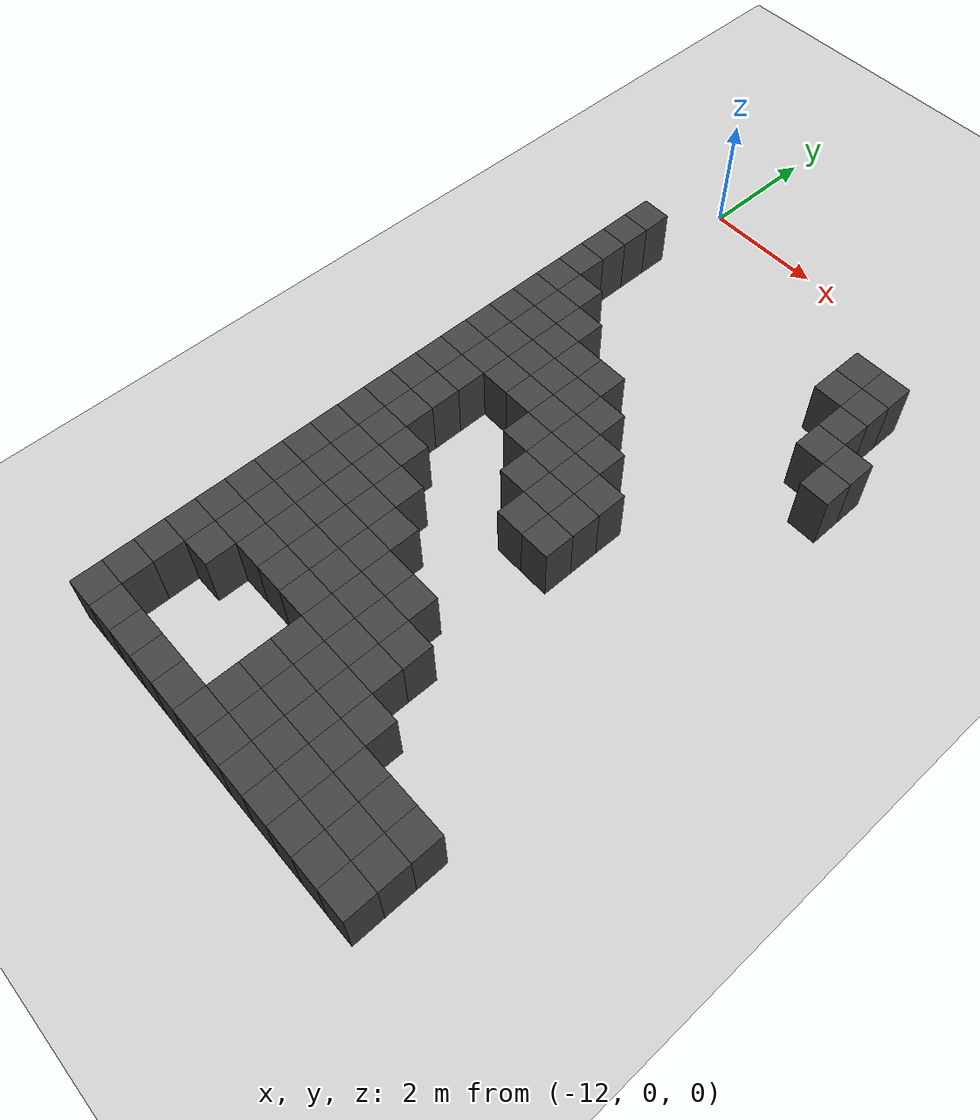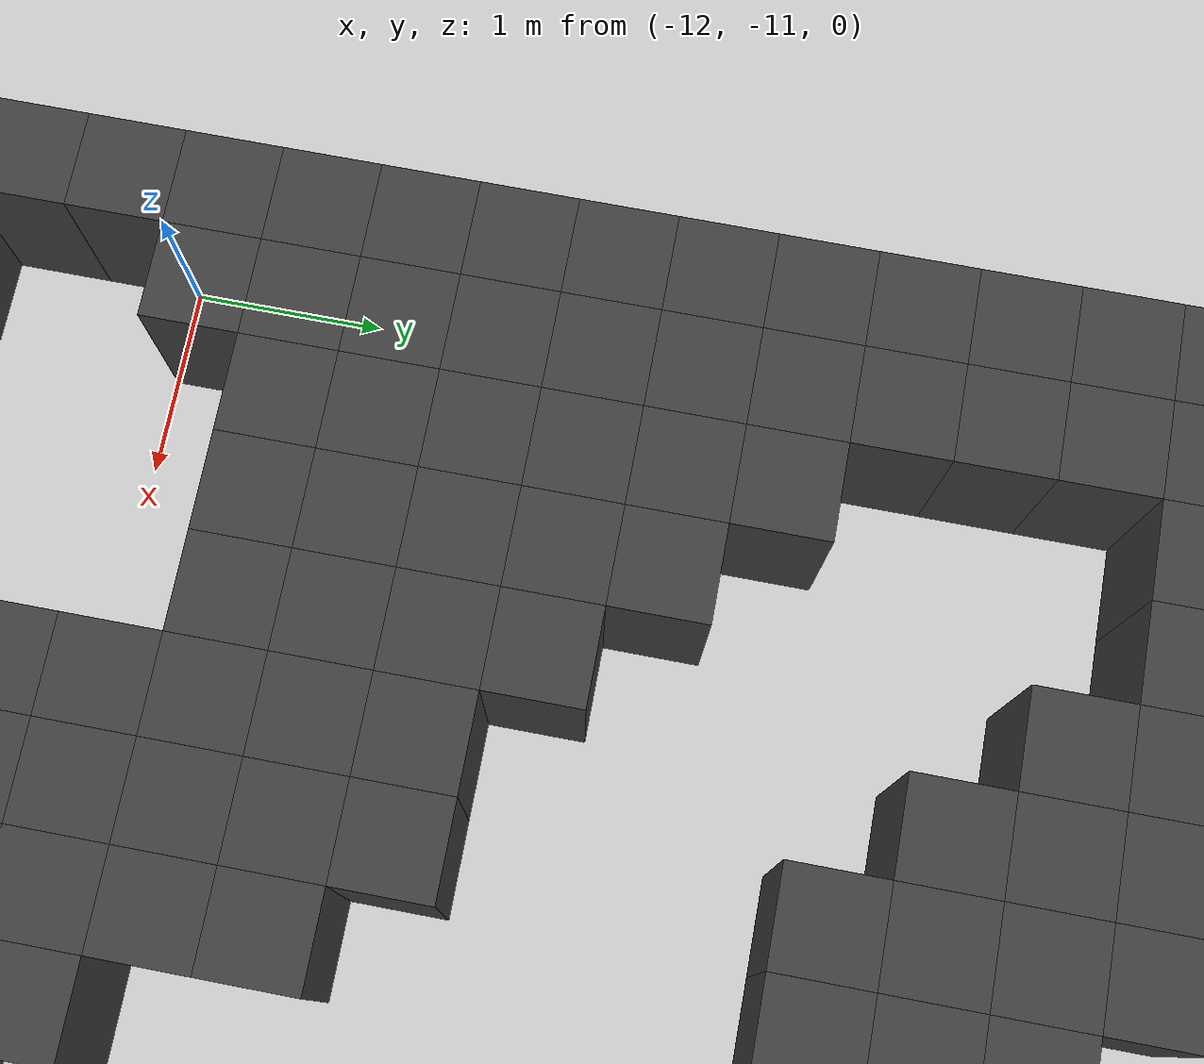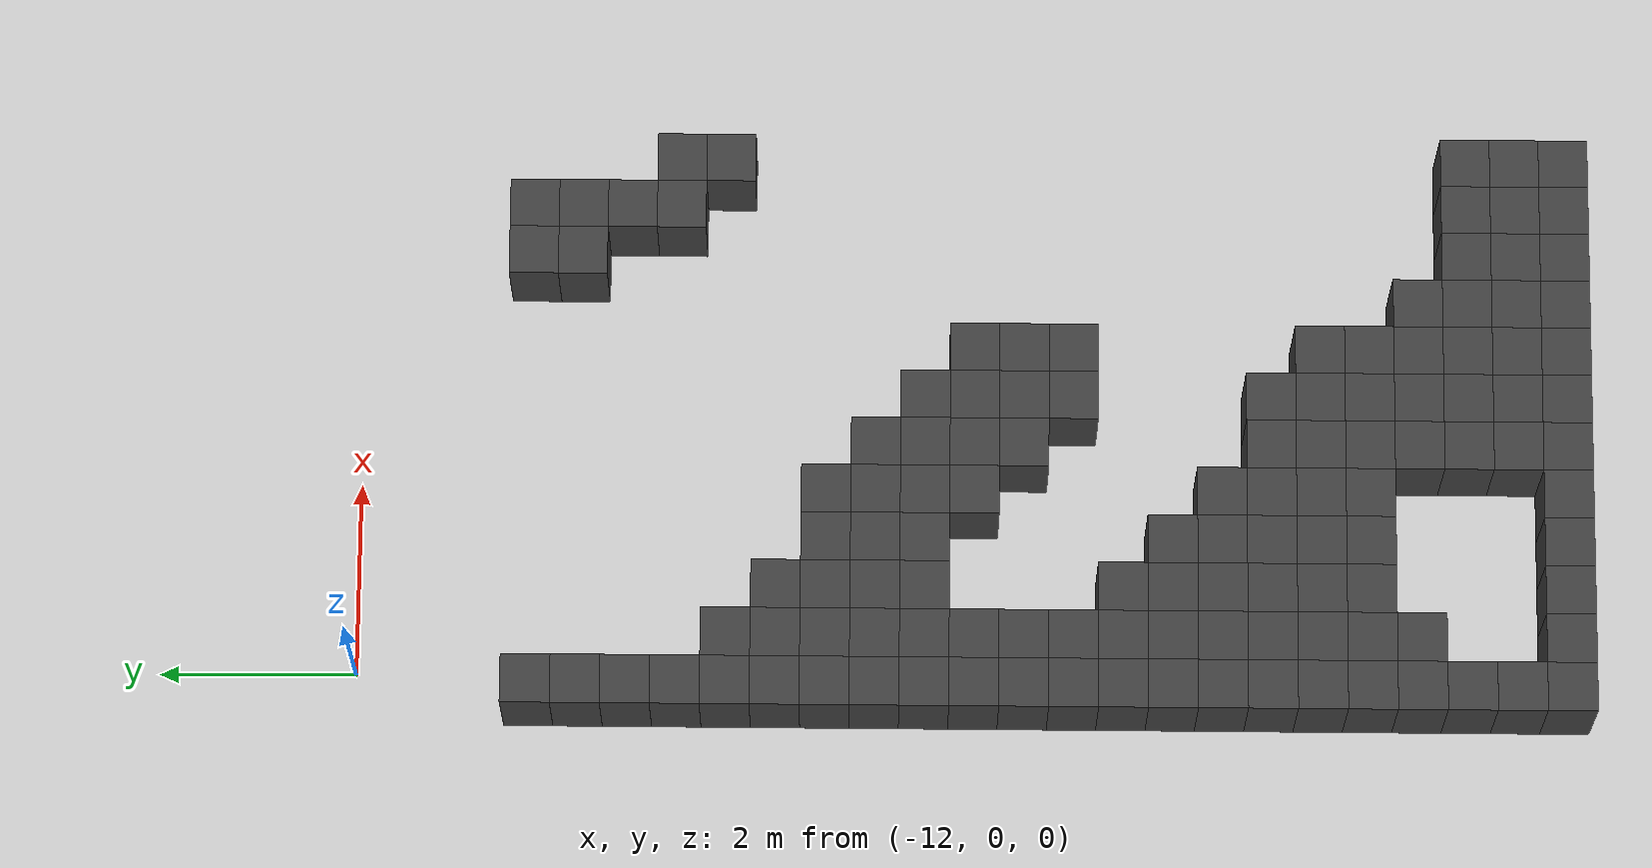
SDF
<sdf version="1.7">
 <world name="map_9826">
  <model name="ground_plane">
   <static>true</static>
   <link name="link">
    <collision name="collision">
     <geometry><plane><normal>0 0 1</normal><size>200 200</size></plane></geometry>
    </collision>
    <visual name="visual">
     <geometry><plane><normal>0 0 1</normal><size>200 200</size></plane></geometry>
     <material><ambient>0.8 0.8 0.8 1</ambient><diffuse>0.8 0.8 0.8 1</diffuse></material>
    </visual>
   </link>
  </model>
  <model name="maze_environment">
   <static>true</static>
   <link name="wall_607">
    <pose>-12.250 -1.750 0.500 0 0 0</pose>
    <collision name="col"><geometry><box><size>0.5 0.5 1.0</size></box></geometry></collision>
    <visual name="vis">
     <geometry><box><size>0.5 0.5 1.0</size></box></geometry>
     <material><ambient>0.15 0.15 0.15 1</ambient><diffuse>0.25 0.25 0.25 1</diffuse></material>
    </visual>
   </link>
   <link name="wall_608">
    <pose>-7.750 -1.750 0.500 0 0 0</pose>
    <collision name="col"><geometry><box><size>0.5 0.5 1.0</size></box></geometry></collision>
    <visual name="vis">
     <geometry><box><size>0.5 0.5 1.0</size></box></geometry>
     <material><ambient>0.15 0.15 0.15 1</ambient><diffuse>0.25 0.25 0.25 1</diffuse></material>
    </visual>
   </link>
   <link name="wall_609">
    <pose>-7.250 -1.750 0.500 0 0 0</pose>
    <collision name="col"><geometry><box><size>0.5 0.5 1.0</size></box></geometry></collision>
    <visual name="vis">
     <geometry><box><size>0.5 0.5 1.0</size></box></geometry>
     <material><ambient>0.15 0.15 0.15 1</ambient><diffuse>0.25 0.25 0.25 1</diffuse></material>
    </visual>
   </link>
   <link name="wall_629">
    <pose>-12.250 -2.250 0.500 0 0 0</pose>
    <collision name="col"><geometry><box><size>0.5 0.5 1.0</size></box></geometry></collision>
    <visual name="vis">
     <geometry><box><size>0.5 0.5 1.0</size></box></geometry>
     <material><ambient>0.15 0.15 0.15 1</ambient><diffuse>0.25 0.25 0.25 1</diffuse></material>
    </visual>
   </link>
   <link name="wall_630">
    <pose>-7.750 -2.250 0.500 0 0 0</pose>
    <collision name="col"><geometry><box><size>0.5 0.5 1.0</size></box></geometry></collision>
    <visual name="vis">
     <geometry><box><size>0.5 0.5 1.0</size></box></geometry>
     <material><ambient>0.15 0.15 0.15 1</ambient><diffuse>0.25 0.25 0.25 1</diffuse></material>
    </visual>
   </link>
   <link name="wall_631">
    <pose>-7.250 -2.250 0.500 0 0 0</pose>
    <collision name="col"><geometry><box><size>0.5 0.5 1.0</size></box></geometry></collision>
    <visual name="vis">
     <geometry><box><size>0.5 0.5 1.0</size></box></geometry>
     <material><ambient>0.15 0.15 0.15 1</ambient><diffuse>0.25 0.25 0.25 1</diffuse></material>
    </visual>
   </link>
   <link name="wall_646">
    <pose>-12.250 -2.750 0.500 0 0 0</pose>
    <collision name="col"><geometry><box><size>0.5 0.5 1.0</size></box></geometry></collision>
    <visual name="vis">
     <geometry><box><size>0.5 0.5 1.0</size></box></geometry>
     <material><ambient>0.15 0.15 0.15 1</ambient><diffuse>0.25 0.25 0.25 1</diffuse></material>
    </visual>
   </link>
   <link name="wall_647">
    <pose>-7.250 -2.750 0.500 0 0 0</pose>
    <collision name="col"><geometry><box><size>0.5 0.5 1.0</size></box></geometry></collision>
    <visual name="vis">
     <geometry><box><size>0.5 0.5 1.0</size></box></geometry>
     <material><ambient>0.15 0.15 0.15 1</ambient><diffuse>0.25 0.25 0.25 1</diffuse></material>
    </visual>
   </link>
   <link name="wall_661">
    <pose>-12.250 -3.250 0.500 0 0 0</pose>
    <collision name="col"><geometry><box><size>0.5 0.5 1.0</size></box></geometry></collision>
    <visual name="vis">
     <geometry><box><size>0.5 0.5 1.0</size></box></geometry>
     <material><ambient>0.15 0.15 0.15 1</ambient><diffuse>0.25 0.25 0.25 1</diffuse></material>
    </visual>
   </link>
   <link name="wall_662">
    <pose>-7.250 -3.250 0.500 0 0 0</pose>
    <collision name="col"><geometry><box><size>0.5 0.5 1.0</size></box></geometry></collision>
    <visual name="vis">
     <geometry><box><size>0.5 0.5 1.0</size></box></geometry>
     <material><ambient>0.15 0.15 0.15 1</ambient><diffuse>0.25 0.25 0.25 1</diffuse></material>
    </visual>
   </link>
   <link name="wall_663">
    <pose>-6.750 -3.250 0.500 0 0 0</pose>
    <collision name="col"><geometry><box><size>0.5 0.5 1.0</size></box></geometry></collision>
    <visual name="vis">
     <geometry><box><size>0.5 0.5 1.0</size></box></geometry>
     <material><ambient>0.15 0.15 0.15 1</ambient><diffuse>0.25 0.25 0.25 1</diffuse></material>
    </visual>
   </link>
   <link name="wall_677">
    <pose>-12.250 -3.750 0.500 0 0 0</pose>
    <collision name="col"><geometry><box><size>0.5 0.5 1.0</size></box></geometry></collision>
    <visual name="vis">
     <geometry><box><size>0.5 0.5 1.0</size></box></geometry>
     <material><ambient>0.15 0.15 0.15 1</ambient><diffuse>0.25 0.25 0.25 1</diffuse></material>
    </visual>
   </link>
   <link name="wall_678">
    <pose>-11.750 -3.750 0.500 0 0 0</pose>
    <collision name="col"><geometry><box><size>0.5 0.5 1.0</size></box></geometry></collision>
    <visual name="vis">
     <geometry><box><size>0.5 0.5 1.0</size></box></geometry>
     <material><ambient>0.15 0.15 0.15 1</ambient><diffuse>0.25 0.25 0.25 1</diffuse></material>
    </visual>
   </link>
   <link name="wall_679">
    <pose>-6.750 -3.750 0.500 0 0 0</pose>
    <collision name="col"><geometry><box><size>0.5 0.5 1.0</size></box></geometry></collision>
    <visual name="vis">
     <geometry><box><size>0.5 0.5 1.0</size></box></geometry>
     <material><ambient>0.15 0.15 0.15 1</ambient><diffuse>0.25 0.25 0.25 1</diffuse></material>
    </visual>
   </link>
   <link name="wall_691">
    <pose>-12.250 -4.250 0.500 0 0 0</pose>
    <collision name="col"><geometry><box><size>0.5 0.5 1.0</size></box></geometry></collision>
    <visual name="vis">
     <geometry><box><size>0.5 0.5 1.0</size></box></geometry>
     <material><ambient>0.15 0.15 0.15 1</ambient><diffuse>0.25 0.25 0.25 1</diffuse></material>
    </visual>
   </link>
   <link name="wall_692">
    <pose>-11.750 -4.250 0.500 0 0 0</pose>
    <collision name="col"><geometry><box><size>0.5 0.5 1.0</size></box></geometry></collision>
    <visual name="vis">
     <geometry><box><size>0.5 0.5 1.0</size></box></geometry>
     <material><ambient>0.15 0.15 0.15 1</ambient><diffuse>0.25 0.25 0.25 1</diffuse></material>
    </visual>
   </link>
   <link name="wall_693">
    <pose>-11.250 -4.250 0.500 0 0 0</pose>
    <collision name="col"><geometry><box><size>0.5 0.5 1.0</size></box></geometry></collision>
    <visual name="vis">
     <geometry><box><size>0.5 0.5 1.0</size></box></geometry>
     <material><ambient>0.15 0.15 0.15 1</ambient><diffuse>0.25 0.25 0.25 1</diffuse></material>
    </visual>
   </link>
   <link name="wall_702">
    <pose>-12.250 -4.750 0.500 0 0 0</pose>
    <collision name="col"><geometry><box><size>0.5 0.5 1.0</size></box></geometry></collision>
    <visual name="vis">
     <geometry><box><size>0.5 0.5 1.0</size></box></geometry>
     <material><ambient>0.15 0.15 0.15 1</ambient><diffuse>0.25 0.25 0.25 1</diffuse></material>
    </visual>
   </link>
   <link name="wall_703">
    <pose>-11.750 -4.750 0.500 0 0 0</pose>
    <collision name="col"><geometry><box><size>0.5 0.5 1.0</size></box></geometry></collision>
    <visual name="vis">
     <geometry><box><size>0.5 0.5 1.0</size></box></geometry>
     <material><ambient>0.15 0.15 0.15 1</ambient><diffuse>0.25 0.25 0.25 1</diffuse></material>
    </visual>
   </link>
   <link name="wall_704">
    <pose>-11.250 -4.750 0.500 0 0 0</pose>
    <collision name="col"><geometry><box><size>0.5 0.5 1.0</size></box></geometry></collision>
    <visual name="vis">
     <geometry><box><size>0.5 0.5 1.0</size></box></geometry>
     <material><ambient>0.15 0.15 0.15 1</ambient><diffuse>0.25 0.25 0.25 1</diffuse></material>
    </visual>
   </link>
   <link name="wall_705">
    <pose>-10.750 -4.750 0.500 0 0 0</pose>
    <collision name="col"><geometry><box><size>0.5 0.5 1.0</size></box></geometry></collision>
    <visual name="vis">
     <geometry><box><size>0.5 0.5 1.0</size></box></geometry>
     <material><ambient>0.15 0.15 0.15 1</ambient><diffuse>0.25 0.25 0.25 1</diffuse></material>
    </visual>
   </link>
   <link name="wall_706">
    <pose>-10.250 -4.750 0.500 0 0 0</pose>
    <collision name="col"><geometry><box><size>0.5 0.5 1.0</size></box></geometry></collision>
    <visual name="vis">
     <geometry><box><size>0.5 0.5 1.0</size></box></geometry>
     <material><ambient>0.15 0.15 0.15 1</ambient><diffuse>0.25 0.25 0.25 1</diffuse></material>
    </visual>
   </link>
   <link name="wall_717">
    <pose>-12.250 -5.250 0.500 0 0 0</pose>
    <collision name="col"><geometry><box><size>0.5 0.5 1.0</size></box></geometry></collision>
    <visual name="vis">
     <geometry><box><size>0.5 0.5 1.0</size></box></geometry>
     <material><ambient>0.15 0.15 0.15 1</ambient><diffuse>0.25 0.25 0.25 1</diffuse></material>
    </visual>
   </link>
   <link name="wall_718">
    <pose>-11.750 -5.250 0.500 0 0 0</pose>
    <collision name="col"><geometry><box><size>0.5 0.5 1.0</size></box></geometry></collision>
    <visual name="vis">
     <geometry><box><size>0.5 0.5 1.0</size></box></geometry>
     <material><ambient>0.15 0.15 0.15 1</ambient><diffuse>0.25 0.25 0.25 1</diffuse></material>
    </visual>
   </link>
   <link name="wall_719">
    <pose>-11.250 -5.250 0.500 0 0 0</pose>
    <collision name="col"><geometry><box><size>0.5 0.5 1.0</size></box></geometry></collision>
    <visual name="vis">
     <geometry><box><size>0.5 0.5 1.0</size></box></geometry>
     <material><ambient>0.15 0.15 0.15 1</ambient><diffuse>0.25 0.25 0.25 1</diffuse></material>
    </visual>
   </link>
   <link name="wall_720">
    <pose>-10.750 -5.250 0.500 0 0 0</pose>
    <collision name="col"><geometry><box><size>0.5 0.5 1.0</size></box></geometry></collision>
    <visual name="vis">
     <geometry><box><size>0.5 0.5 1.0</size></box></geometry>
     <material><ambient>0.15 0.15 0.15 1</ambient><diffuse>0.25 0.25 0.25 1</diffuse></material>
    </visual>
   </link>
   <link name="wall_721">
    <pose>-10.250 -5.250 0.500 0 0 0</pose>
    <collision name="col"><geometry><box><size>0.5 0.5 1.0</size></box></geometry></collision>
    <visual name="vis">
     <geometry><box><size>0.5 0.5 1.0</size></box></geometry>
     <material><ambient>0.15 0.15 0.15 1</ambient><diffuse>0.25 0.25 0.25 1</diffuse></material>
    </visual>
   </link>
   <link name="wall_722">
    <pose>-9.750 -5.250 0.500 0 0 0</pose>
    <collision name="col"><geometry><box><size>0.5 0.5 1.0</size></box></geometry></collision>
    <visual name="vis">
     <geometry><box><size>0.5 0.5 1.0</size></box></geometry>
     <material><ambient>0.15 0.15 0.15 1</ambient><diffuse>0.25 0.25 0.25 1</diffuse></material>
    </visual>
   </link>
   <link name="wall_735">
    <pose>-12.250 -5.750 0.500 0 0 0</pose>
    <collision name="col"><geometry><box><size>0.5 0.5 1.0</size></box></geometry></collision>
    <visual name="vis">
     <geometry><box><size>0.5 0.5 1.0</size></box></geometry>
     <material><ambient>0.15 0.15 0.15 1</ambient><diffuse>0.25 0.25 0.25 1</diffuse></material>
    </visual>
   </link>
   <link name="wall_736">
    <pose>-11.750 -5.750 0.500 0 0 0</pose>
    <collision name="col"><geometry><box><size>0.5 0.5 1.0</size></box></geometry></collision>
    <visual name="vis">
     <geometry><box><size>0.5 0.5 1.0</size></box></geometry>
     <material><ambient>0.15 0.15 0.15 1</ambient><diffuse>0.25 0.25 0.25 1</diffuse></material>
    </visual>
   </link>
   <link name="wall_737">
    <pose>-11.250 -5.750 0.500 0 0 0</pose>
    <collision name="col"><geometry><box><size>0.5 0.5 1.0</size></box></geometry></collision>
    <visual name="vis">
     <geometry><box><size>0.5 0.5 1.0</size></box></geometry>
     <material><ambient>0.15 0.15 0.15 1</ambient><diffuse>0.25 0.25 0.25 1</diffuse></material>
    </visual>
   </link>
   <link name="wall_738">
    <pose>-10.750 -5.750 0.500 0 0 0</pose>
    <collision name="col"><geometry><box><size>0.5 0.5 1.0</size></box></geometry></collision>
    <visual name="vis">
     <geometry><box><size>0.5 0.5 1.0</size></box></geometry>
     <material><ambient>0.15 0.15 0.15 1</ambient><diffuse>0.25 0.25 0.25 1</diffuse></material>
    </visual>
   </link>
   <link name="wall_739">
    <pose>-10.250 -5.750 0.500 0 0 0</pose>
    <collision name="col"><geometry><box><size>0.5 0.5 1.0</size></box></geometry></collision>
    <visual name="vis">
     <geometry><box><size>0.5 0.5 1.0</size></box></geometry>
     <material><ambient>0.15 0.15 0.15 1</ambient><diffuse>0.25 0.25 0.25 1</diffuse></material>
    </visual>
   </link>
   <link name="wall_740">
    <pose>-9.750 -5.750 0.500 0 0 0</pose>
    <collision name="col"><geometry><box><size>0.5 0.5 1.0</size></box></geometry></collision>
    <visual name="vis">
     <geometry><box><size>0.5 0.5 1.0</size></box></geometry>
     <material><ambient>0.15 0.15 0.15 1</ambient><diffuse>0.25 0.25 0.25 1</diffuse></material>
    </visual>
   </link>
   <link name="wall_741">
    <pose>-9.250 -5.750 0.500 0 0 0</pose>
    <collision name="col"><geometry><box><size>0.5 0.5 1.0</size></box></geometry></collision>
    <visual name="vis">
     <geometry><box><size>0.5 0.5 1.0</size></box></geometry>
     <material><ambient>0.15 0.15 0.15 1</ambient><diffuse>0.25 0.25 0.25 1</diffuse></material>
    </visual>
   </link>
   <link name="wall_755">
    <pose>-12.250 -6.250 0.500 0 0 0</pose>
    <collision name="col"><geometry><box><size>0.5 0.5 1.0</size></box></geometry></collision>
    <visual name="vis">
     <geometry><box><size>0.5 0.5 1.0</size></box></geometry>
     <material><ambient>0.15 0.15 0.15 1</ambient><diffuse>0.25 0.25 0.25 1</diffuse></material>
    </visual>
   </link>
   <link name="wall_756">
    <pose>-11.750 -6.250 0.500 0 0 0</pose>
    <collision name="col"><geometry><box><size>0.5 0.5 1.0</size></box></geometry></collision>
    <visual name="vis">
     <geometry><box><size>0.5 0.5 1.0</size></box></geometry>
     <material><ambient>0.15 0.15 0.15 1</ambient><diffuse>0.25 0.25 0.25 1</diffuse></material>
    </visual>
   </link>
   <link name="wall_757">
    <pose>-10.250 -6.250 0.500 0 0 0</pose>
    <collision name="col"><geometry><box><size>0.5 0.5 1.0</size></box></geometry></collision>
    <visual name="vis">
     <geometry><box><size>0.5 0.5 1.0</size></box></geometry>
     <material><ambient>0.15 0.15 0.15 1</ambient><diffuse>0.25 0.25 0.25 1</diffuse></material>
    </visual>
   </link>
   <link name="wall_758">
    <pose>-9.750 -6.250 0.500 0 0 0</pose>
    <collision name="col"><geometry><box><size>0.5 0.5 1.0</size></box></geometry></collision>
    <visual name="vis">
     <geometry><box><size>0.5 0.5 1.0</size></box></geometry>
     <material><ambient>0.15 0.15 0.15 1</ambient><diffuse>0.25 0.25 0.25 1</diffuse></material>
    </visual>
   </link>
   <link name="wall_759">
    <pose>-9.250 -6.250 0.500 0 0 0</pose>
    <collision name="col"><geometry><box><size>0.5 0.5 1.0</size></box></geometry></collision>
    <visual name="vis">
     <geometry><box><size>0.5 0.5 1.0</size></box></geometry>
     <material><ambient>0.15 0.15 0.15 1</ambient><diffuse>0.25 0.25 0.25 1</diffuse></material>
    </visual>
   </link>
   <link name="wall_760">
    <pose>-8.750 -6.250 0.500 0 0 0</pose>
    <collision name="col"><geometry><box><size>0.5 0.5 1.0</size></box></geometry></collision>
    <visual name="vis">
     <geometry><box><size>0.5 0.5 1.0</size></box></geometry>
     <material><ambient>0.15 0.15 0.15 1</ambient><diffuse>0.25 0.25 0.25 1</diffuse></material>
    </visual>
   </link>
   <link name="wall_778">
    <pose>-12.250 -6.750 0.500 0 0 0</pose>
    <collision name="col"><geometry><box><size>0.5 0.5 1.0</size></box></geometry></collision>
    <visual name="vis">
     <geometry><box><size>0.5 0.5 1.0</size></box></geometry>
     <material><ambient>0.15 0.15 0.15 1</ambient><diffuse>0.25 0.25 0.25 1</diffuse></material>
    </visual>
   </link>
   <link name="wall_779">
    <pose>-11.750 -6.750 0.500 0 0 0</pose>
    <collision name="col"><geometry><box><size>0.5 0.5 1.0</size></box></geometry></collision>
    <visual name="vis">
     <geometry><box><size>0.5 0.5 1.0</size></box></geometry>
     <material><ambient>0.15 0.15 0.15 1</ambient><diffuse>0.25 0.25 0.25 1</diffuse></material>
    </visual>
   </link>
   <link name="wall_780">
    <pose>-9.750 -6.750 0.500 0 0 0</pose>
    <collision name="col"><geometry><box><size>0.5 0.5 1.0</size></box></geometry></collision>
    <visual name="vis">
     <geometry><box><size>0.5 0.5 1.0</size></box></geometry>
     <material><ambient>0.15 0.15 0.15 1</ambient><diffuse>0.25 0.25 0.25 1</diffuse></material>
    </visual>
   </link>
   <link name="wall_781">
    <pose>-9.250 -6.750 0.500 0 0 0</pose>
    <collision name="col"><geometry><box><size>0.5 0.5 1.0</size></box></geometry></collision>
    <visual name="vis">
     <geometry><box><size>0.5 0.5 1.0</size></box></geometry>
     <material><ambient>0.15 0.15 0.15 1</ambient><diffuse>0.25 0.25 0.25 1</diffuse></material>
    </visual>
   </link>
   <link name="wall_782">
    <pose>-8.750 -6.750 0.500 0 0 0</pose>
    <collision name="col"><geometry><box><size>0.5 0.5 1.0</size></box></geometry></collision>
    <visual name="vis">
     <geometry><box><size>0.5 0.5 1.0</size></box></geometry>
     <material><ambient>0.15 0.15 0.15 1</ambient><diffuse>0.25 0.25 0.25 1</diffuse></material>
    </visual>
   </link>
   <link name="wall_800">
    <pose>-12.250 -7.250 0.500 0 0 0</pose>
    <collision name="col"><geometry><box><size>0.5 0.5 1.0</size></box></geometry></collision>
    <visual name="vis">
     <geometry><box><size>0.5 0.5 1.0</size></box></geometry>
     <material><ambient>0.15 0.15 0.15 1</ambient><diffuse>0.25 0.25 0.25 1</diffuse></material>
    </visual>
   </link>
   <link name="wall_801">
    <pose>-11.750 -7.250 0.500 0 0 0</pose>
    <collision name="col"><geometry><box><size>0.5 0.5 1.0</size></box></geometry></collision>
    <visual name="vis">
     <geometry><box><size>0.5 0.5 1.0</size></box></geometry>
     <material><ambient>0.15 0.15 0.15 1</ambient><diffuse>0.25 0.25 0.25 1</diffuse></material>
    </visual>
   </link>
   <link name="wall_802">
    <pose>-9.250 -7.250 0.500 0 0 0</pose>
    <collision name="col"><geometry><box><size>0.5 0.5 1.0</size></box></geometry></collision>
    <visual name="vis">
     <geometry><box><size>0.5 0.5 1.0</size></box></geometry>
     <material><ambient>0.15 0.15 0.15 1</ambient><diffuse>0.25 0.25 0.25 1</diffuse></material>
    </visual>
   </link>
   <link name="wall_803">
    <pose>-8.750 -7.250 0.500 0 0 0</pose>
    <collision name="col"><geometry><box><size>0.5 0.5 1.0</size></box></geometry></collision>
    <visual name="vis">
     <geometry><box><size>0.5 0.5 1.0</size></box></geometry>
     <material><ambient>0.15 0.15 0.15 1</ambient><diffuse>0.25 0.25 0.25 1</diffuse></material>
    </visual>
   </link>
   <link name="wall_816">
    <pose>-12.250 -7.750 0.500 0 0 0</pose>
    <collision name="col"><geometry><box><size>0.5 0.5 1.0</size></box></geometry></collision>
    <visual name="vis">
     <geometry><box><size>0.5 0.5 1.0</size></box></geometry>
     <material><ambient>0.15 0.15 0.15 1</ambient><diffuse>0.25 0.25 0.25 1</diffuse></material>
    </visual>
   </link>
   <link name="wall_817">
    <pose>-11.750 -7.750 0.500 0 0 0</pose>
    <collision name="col"><geometry><box><size>0.5 0.5 1.0</size></box></geometry></collision>
    <visual name="vis">
     <geometry><box><size>0.5 0.5 1.0</size></box></geometry>
     <material><ambient>0.15 0.15 0.15 1</ambient><diffuse>0.25 0.25 0.25 1</diffuse></material>
    </visual>
   </link>
   <link name="wall_818">
    <pose>-11.250 -7.750 0.500 0 0 0</pose>
    <collision name="col"><geometry><box><size>0.5 0.5 1.0</size></box></geometry></collision>
    <visual name="vis">
     <geometry><box><size>0.5 0.5 1.0</size></box></geometry>
     <material><ambient>0.15 0.15 0.15 1</ambient><diffuse>0.25 0.25 0.25 1</diffuse></material>
    </visual>
   </link>
   <link name="wall_831">
    <pose>-12.250 -8.250 0.500 0 0 0</pose>
    <collision name="col"><geometry><box><size>0.5 0.5 1.0</size></box></geometry></collision>
    <visual name="vis">
     <geometry><box><size>0.5 0.5 1.0</size></box></geometry>
     <material><ambient>0.15 0.15 0.15 1</ambient><diffuse>0.25 0.25 0.25 1</diffuse></material>
    </visual>
   </link>
   <link name="wall_832">
    <pose>-11.750 -8.250 0.500 0 0 0</pose>
    <collision name="col"><geometry><box><size>0.5 0.5 1.0</size></box></geometry></collision>
    <visual name="vis">
     <geometry><box><size>0.5 0.5 1.0</size></box></geometry>
     <material><ambient>0.15 0.15 0.15 1</ambient><diffuse>0.25 0.25 0.25 1</diffuse></material>
    </visual>
   </link>
   <link name="wall_833">
    <pose>-11.250 -8.250 0.500 0 0 0</pose>
    <collision name="col"><geometry><box><size>0.5 0.5 1.0</size></box></geometry></collision>
    <visual name="vis">
     <geometry><box><size>0.5 0.5 1.0</size></box></geometry>
     <material><ambient>0.15 0.15 0.15 1</ambient><diffuse>0.25 0.25 0.25 1</diffuse></material>
    </visual>
   </link>
   <link name="wall_834">
    <pose>-10.750 -8.250 0.500 0 0 0</pose>
    <collision name="col"><geometry><box><size>0.5 0.5 1.0</size></box></geometry></collision>
    <visual name="vis">
     <geometry><box><size>0.5 0.5 1.0</size></box></geometry>
     <material><ambient>0.15 0.15 0.15 1</ambient><diffuse>0.25 0.25 0.25 1</diffuse></material>
    </visual>
   </link>
   <link name="wall_849">
    <pose>-12.250 -8.750 0.500 0 0 0</pose>
    <collision name="col"><geometry><box><size>0.5 0.5 1.0</size></box></geometry></collision>
    <visual name="vis">
     <geometry><box><size>0.5 0.5 1.0</size></box></geometry>
     <material><ambient>0.15 0.15 0.15 1</ambient><diffuse>0.25 0.25 0.25 1</diffuse></material>
    </visual>
   </link>
   <link name="wall_850">
    <pose>-11.750 -8.750 0.500 0 0 0</pose>
    <collision name="col"><geometry><box><size>0.5 0.5 1.0</size></box></geometry></collision>
    <visual name="vis">
     <geometry><box><size>0.5 0.5 1.0</size></box></geometry>
     <material><ambient>0.15 0.15 0.15 1</ambient><diffuse>0.25 0.25 0.25 1</diffuse></material>
    </visual>
   </link>
   <link name="wall_851">
    <pose>-11.250 -8.750 0.500 0 0 0</pose>
    <collision name="col"><geometry><box><size>0.5 0.5 1.0</size></box></geometry></collision>
    <visual name="vis">
     <geometry><box><size>0.5 0.5 1.0</size></box></geometry>
     <material><ambient>0.15 0.15 0.15 1</ambient><diffuse>0.25 0.25 0.25 1</diffuse></material>
    </visual>
   </link>
   <link name="wall_852">
    <pose>-10.750 -8.750 0.500 0 0 0</pose>
    <collision name="col"><geometry><box><size>0.5 0.5 1.0</size></box></geometry></collision>
    <visual name="vis">
     <geometry><box><size>0.5 0.5 1.0</size></box></geometry>
     <material><ambient>0.15 0.15 0.15 1</ambient><diffuse>0.25 0.25 0.25 1</diffuse></material>
    </visual>
   </link>
   <link name="wall_853">
    <pose>-10.250 -8.750 0.500 0 0 0</pose>
    <collision name="col"><geometry><box><size>0.5 0.5 1.0</size></box></geometry></collision>
    <visual name="vis">
     <geometry><box><size>0.5 0.5 1.0</size></box></geometry>
     <material><ambient>0.15 0.15 0.15 1</ambient><diffuse>0.25 0.25 0.25 1</diffuse></material>
    </visual>
   </link>
   <link name="wall_871">
    <pose>-12.250 -9.250 0.500 0 0 0</pose>
    <collision name="col"><geometry><box><size>0.5 0.5 1.0</size></box></geometry></collision>
    <visual name="vis">
     <geometry><box><size>0.5 0.5 1.0</size></box></geometry>
     <material><ambient>0.15 0.15 0.15 1</ambient><diffuse>0.25 0.25 0.25 1</diffuse></material>
    </visual>
   </link>
   <link name="wall_872">
    <pose>-11.750 -9.250 0.500 0 0 0</pose>
    <collision name="col"><geometry><box><size>0.5 0.5 1.0</size></box></geometry></collision>
    <visual name="vis">
     <geometry><box><size>0.5 0.5 1.0</size></box></geometry>
     <material><ambient>0.15 0.15 0.15 1</ambient><diffuse>0.25 0.25 0.25 1</diffuse></material>
    </visual>
   </link>
   <link name="wall_873">
    <pose>-11.250 -9.250 0.500 0 0 0</pose>
    <collision name="col"><geometry><box><size>0.5 0.5 1.0</size></box></geometry></collision>
    <visual name="vis">
     <geometry><box><size>0.5 0.5 1.0</size></box></geometry>
     <material><ambient>0.15 0.15 0.15 1</ambient><diffuse>0.25 0.25 0.25 1</diffuse></material>
    </visual>
   </link>
   <link name="wall_874">
    <pose>-10.750 -9.250 0.500 0 0 0</pose>
    <collision name="col"><geometry><box><size>0.5 0.5 1.0</size></box></geometry></collision>
    <visual name="vis">
     <geometry><box><size>0.5 0.5 1.0</size></box></geometry>
     <material><ambient>0.15 0.15 0.15 1</ambient><diffuse>0.25 0.25 0.25 1</diffuse></material>
    </visual>
   </link>
   <link name="wall_875">
    <pose>-10.250 -9.250 0.500 0 0 0</pose>
    <collision name="col"><geometry><box><size>0.5 0.5 1.0</size></box></geometry></collision>
    <visual name="vis">
     <geometry><box><size>0.5 0.5 1.0</size></box></geometry>
     <material><ambient>0.15 0.15 0.15 1</ambient><diffuse>0.25 0.25 0.25 1</diffuse></material>
    </visual>
   </link>
   <link name="wall_876">
    <pose>-9.750 -9.250 0.500 0 0 0</pose>
    <collision name="col"><geometry><box><size>0.5 0.5 1.0</size></box></geometry></collision>
    <visual name="vis">
     <geometry><box><size>0.5 0.5 1.0</size></box></geometry>
     <material><ambient>0.15 0.15 0.15 1</ambient><diffuse>0.25 0.25 0.25 1</diffuse></material>
    </visual>
   </link>
   <link name="wall_877">
    <pose>-9.250 -9.250 0.500 0 0 0</pose>
    <collision name="col"><geometry><box><size>0.5 0.5 1.0</size></box></geometry></collision>
    <visual name="vis">
     <geometry><box><size>0.5 0.5 1.0</size></box></geometry>
     <material><ambient>0.15 0.15 0.15 1</ambient><diffuse>0.25 0.25 0.25 1</diffuse></material>
    </visual>
   </link>
   <link name="wall_895">
    <pose>-12.250 -9.750 0.500 0 0 0</pose>
    <collision name="col"><geometry><box><size>0.5 0.5 1.0</size></box></geometry></collision>
    <visual name="vis">
     <geometry><box><size>0.5 0.5 1.0</size></box></geometry>
     <material><ambient>0.15 0.15 0.15 1</ambient><diffuse>0.25 0.25 0.25 1</diffuse></material>
    </visual>
   </link>
   <link name="wall_896">
    <pose>-11.750 -9.750 0.500 0 0 0</pose>
    <collision name="col"><geometry><box><size>0.5 0.5 1.0</size></box></geometry></collision>
    <visual name="vis">
     <geometry><box><size>0.5 0.5 1.0</size></box></geometry>
     <material><ambient>0.15 0.15 0.15 1</ambient><diffuse>0.25 0.25 0.25 1</diffuse></material>
    </visual>
   </link>
   <link name="wall_897">
    <pose>-11.250 -9.750 0.500 0 0 0</pose>
    <collision name="col"><geometry><box><size>0.5 0.5 1.0</size></box></geometry></collision>
    <visual name="vis">
     <geometry><box><size>0.5 0.5 1.0</size></box></geometry>
     <material><ambient>0.15 0.15 0.15 1</ambient><diffuse>0.25 0.25 0.25 1</diffuse></material>
    </visual>
   </link>
   <link name="wall_898">
    <pose>-10.750 -9.750 0.500 0 0 0</pose>
    <collision name="col"><geometry><box><size>0.5 0.5 1.0</size></box></geometry></collision>
    <visual name="vis">
     <geometry><box><size>0.5 0.5 1.0</size></box></geometry>
     <material><ambient>0.15 0.15 0.15 1</ambient><diffuse>0.25 0.25 0.25 1</diffuse></material>
    </visual>
   </link>
   <link name="wall_899">
    <pose>-10.250 -9.750 0.500 0 0 0</pose>
    <collision name="col"><geometry><box><size>0.5 0.5 1.0</size></box></geometry></collision>
    <visual name="vis">
     <geometry><box><size>0.5 0.5 1.0</size></box></geometry>
     <material><ambient>0.15 0.15 0.15 1</ambient><diffuse>0.25 0.25 0.25 1</diffuse></material>
    </visual>
   </link>
   <link name="wall_900">
    <pose>-9.750 -9.750 0.500 0 0 0</pose>
    <collision name="col"><geometry><box><size>0.5 0.5 1.0</size></box></geometry></collision>
    <visual name="vis">
     <geometry><box><size>0.5 0.5 1.0</size></box></geometry>
     <material><ambient>0.15 0.15 0.15 1</ambient><diffuse>0.25 0.25 0.25 1</diffuse></material>
    </visual>
   </link>
   <link name="wall_901">
    <pose>-9.250 -9.750 0.500 0 0 0</pose>
    <collision name="col"><geometry><box><size>0.5 0.5 1.0</size></box></geometry></collision>
    <visual name="vis">
     <geometry><box><size>0.5 0.5 1.0</size></box></geometry>
     <material><ambient>0.15 0.15 0.15 1</ambient><diffuse>0.25 0.25 0.25 1</diffuse></material>
    </visual>
   </link>
   <link name="wall_902">
    <pose>-8.750 -9.750 0.500 0 0 0</pose>
    <collision name="col"><geometry><box><size>0.5 0.5 1.0</size></box></geometry></collision>
    <visual name="vis">
     <geometry><box><size>0.5 0.5 1.0</size></box></geometry>
     <material><ambient>0.15 0.15 0.15 1</ambient><diffuse>0.25 0.25 0.25 1</diffuse></material>
    </visual>
   </link>
   <link name="wall_921">
    <pose>-12.250 -10.250 0.500 0 0 0</pose>
    <collision name="col"><geometry><box><size>0.5 0.5 1.0</size></box></geometry></collision>
    <visual name="vis">
     <geometry><box><size>0.5 0.5 1.0</size></box></geometry>
     <material><ambient>0.15 0.15 0.15 1</ambient><diffuse>0.25 0.25 0.25 1</diffuse></material>
    </visual>
   </link>
   <link name="wall_922">
    <pose>-11.750 -10.250 0.500 0 0 0</pose>
    <collision name="col"><geometry><box><size>0.5 0.5 1.0</size></box></geometry></collision>
    <visual name="vis">
     <geometry><box><size>0.5 0.5 1.0</size></box></geometry>
     <material><ambient>0.15 0.15 0.15 1</ambient><diffuse>0.25 0.25 0.25 1</diffuse></material>
    </visual>
   </link>
   <link name="wall_923">
    <pose>-11.250 -10.250 0.500 0 0 0</pose>
    <collision name="col"><geometry><box><size>0.5 0.5 1.0</size></box></geometry></collision>
    <visual name="vis">
     <geometry><box><size>0.5 0.5 1.0</size></box></geometry>
     <material><ambient>0.15 0.15 0.15 1</ambient><diffuse>0.25 0.25 0.25 1</diffuse></material>
    </visual>
   </link>
   <link name="wall_924">
    <pose>-10.750 -10.250 0.500 0 0 0</pose>
    <collision name="col"><geometry><box><size>0.5 0.5 1.0</size></box></geometry></collision>
    <visual name="vis">
     <geometry><box><size>0.5 0.5 1.0</size></box></geometry>
     <material><ambient>0.15 0.15 0.15 1</ambient><diffuse>0.25 0.25 0.25 1</diffuse></material>
    </visual>
   </link>
   <link name="wall_925">
    <pose>-10.250 -10.250 0.500 0 0 0</pose>
    <collision name="col"><geometry><box><size>0.5 0.5 1.0</size></box></geometry></collision>
    <visual name="vis">
     <geometry><box><size>0.5 0.5 1.0</size></box></geometry>
     <material><ambient>0.15 0.15 0.15 1</ambient><diffuse>0.25 0.25 0.25 1</diffuse></material>
    </visual>
   </link>
   <link name="wall_926">
    <pose>-9.750 -10.250 0.500 0 0 0</pose>
    <collision name="col"><geometry><box><size>0.5 0.5 1.0</size></box></geometry></collision>
    <visual name="vis">
     <geometry><box><size>0.5 0.5 1.0</size></box></geometry>
     <material><ambient>0.15 0.15 0.15 1</ambient><diffuse>0.25 0.25 0.25 1</diffuse></material>
    </visual>
   </link>
   <link name="wall_927">
    <pose>-9.250 -10.250 0.500 0 0 0</pose>
    <collision name="col"><geometry><box><size>0.5 0.5 1.0</size></box></geometry></collision>
    <visual name="vis">
     <geometry><box><size>0.5 0.5 1.0</size></box></geometry>
     <material><ambient>0.15 0.15 0.15 1</ambient><diffuse>0.25 0.25 0.25 1</diffuse></material>
    </visual>
   </link>
   <link name="wall_928">
    <pose>-8.750 -10.250 0.500 0 0 0</pose>
    <collision name="col"><geometry><box><size>0.5 0.5 1.0</size></box></geometry></collision>
    <visual name="vis">
     <geometry><box><size>0.5 0.5 1.0</size></box></geometry>
     <material><ambient>0.15 0.15 0.15 1</ambient><diffuse>0.25 0.25 0.25 1</diffuse></material>
    </visual>
   </link>
   <link name="wall_948">
    <pose>-12.250 -10.750 0.500 0 0 0</pose>
    <collision name="col"><geometry><box><size>0.5 0.5 1.0</size></box></geometry></collision>
    <visual name="vis">
     <geometry><box><size>0.5 0.5 1.0</size></box></geometry>
     <material><ambient>0.15 0.15 0.15 1</ambient><diffuse>0.25 0.25 0.25 1</diffuse></material>
    </visual>
   </link>
   <link name="wall_949">
    <pose>-11.750 -10.750 0.500 0 0 0</pose>
    <collision name="col"><geometry><box><size>0.5 0.5 1.0</size></box></geometry></collision>
    <visual name="vis">
     <geometry><box><size>0.5 0.5 1.0</size></box></geometry>
     <material><ambient>0.15 0.15 0.15 1</ambient><diffuse>0.25 0.25 0.25 1</diffuse></material>
    </visual>
   </link>
   <link name="wall_950">
    <pose>-9.750 -10.750 0.500 0 0 0</pose>
    <collision name="col"><geometry><box><size>0.5 0.5 1.0</size></box></geometry></collision>
    <visual name="vis">
     <geometry><box><size>0.5 0.5 1.0</size></box></geometry>
     <material><ambient>0.15 0.15 0.15 1</ambient><diffuse>0.25 0.25 0.25 1</diffuse></material>
    </visual>
   </link>
   <link name="wall_951">
    <pose>-9.250 -10.750 0.500 0 0 0</pose>
    <collision name="col"><geometry><box><size>0.5 0.5 1.0</size></box></geometry></collision>
    <visual name="vis">
     <geometry><box><size>0.5 0.5 1.0</size></box></geometry>
     <material><ambient>0.15 0.15 0.15 1</ambient><diffuse>0.25 0.25 0.25 1</diffuse></material>
    </visual>
   </link>
   <link name="wall_952">
    <pose>-8.750 -10.750 0.500 0 0 0</pose>
    <collision name="col"><geometry><box><size>0.5 0.5 1.0</size></box></geometry></collision>
    <visual name="vis">
     <geometry><box><size>0.5 0.5 1.0</size></box></geometry>
     <material><ambient>0.15 0.15 0.15 1</ambient><diffuse>0.25 0.25 0.25 1</diffuse></material>
    </visual>
   </link>
   <link name="wall_953">
    <pose>-8.250 -10.750 0.500 0 0 0</pose>
    <collision name="col"><geometry><box><size>0.5 0.5 1.0</size></box></geometry></collision>
    <visual name="vis">
     <geometry><box><size>0.5 0.5 1.0</size></box></geometry>
     <material><ambient>0.15 0.15 0.15 1</ambient><diffuse>0.25 0.25 0.25 1</diffuse></material>
    </visual>
   </link>
   <link name="wall_971">
    <pose>-12.250 -11.250 0.500 0 0 0</pose>
    <collision name="col"><geometry><box><size>0.5 0.5 1.0</size></box></geometry></collision>
    <visual name="vis">
     <geometry><box><size>0.5 0.5 1.0</size></box></geometry>
     <material><ambient>0.15 0.15 0.15 1</ambient><diffuse>0.25 0.25 0.25 1</diffuse></material>
    </visual>
   </link>
   <link name="wall_972">
    <pose>-9.750 -11.250 0.500 0 0 0</pose>
    <collision name="col"><geometry><box><size>0.5 0.5 1.0</size></box></geometry></collision>
    <visual name="vis">
     <geometry><box><size>0.5 0.5 1.0</size></box></geometry>
     <material><ambient>0.15 0.15 0.15 1</ambient><diffuse>0.25 0.25 0.25 1</diffuse></material>
    </visual>
   </link>
   <link name="wall_973">
    <pose>-9.250 -11.250 0.500 0 0 0</pose>
    <collision name="col"><geometry><box><size>0.5 0.5 1.0</size></box></geometry></collision>
    <visual name="vis">
     <geometry><box><size>0.5 0.5 1.0</size></box></geometry>
     <material><ambient>0.15 0.15 0.15 1</ambient><diffuse>0.25 0.25 0.25 1</diffuse></material>
    </visual>
   </link>
   <link name="wall_974">
    <pose>-8.750 -11.250 0.500 0 0 0</pose>
    <collision name="col"><geometry><box><size>0.5 0.5 1.0</size></box></geometry></collision>
    <visual name="vis">
     <geometry><box><size>0.5 0.5 1.0</size></box></geometry>
     <material><ambient>0.15 0.15 0.15 1</ambient><diffuse>0.25 0.25 0.25 1</diffuse></material>
    </visual>
   </link>
   <link name="wall_975">
    <pose>-8.250 -11.250 0.500 0 0 0</pose>
    <collision name="col"><geometry><box><size>0.5 0.5 1.0</size></box></geometry></collision>
    <visual name="vis">
     <geometry><box><size>0.5 0.5 1.0</size></box></geometry>
     <material><ambient>0.15 0.15 0.15 1</ambient><diffuse>0.25 0.25 0.25 1</diffuse></material>
    </visual>
   </link>
   <link name="wall_976">
    <pose>-7.750 -11.250 0.500 0 0 0</pose>
    <collision name="col"><geometry><box><size>0.5 0.5 1.0</size></box></geometry></collision>
    <visual name="vis">
     <geometry><box><size>0.5 0.5 1.0</size></box></geometry>
     <material><ambient>0.15 0.15 0.15 1</ambient><diffuse>0.25 0.25 0.25 1</diffuse></material>
    </visual>
   </link>
   <link name="wall_977">
    <pose>-7.250 -11.250 0.500 0 0 0</pose>
    <collision name="col"><geometry><box><size>0.5 0.5 1.0</size></box></geometry></collision>
    <visual name="vis">
     <geometry><box><size>0.5 0.5 1.0</size></box></geometry>
     <material><ambient>0.15 0.15 0.15 1</ambient><diffuse>0.25 0.25 0.25 1</diffuse></material>
    </visual>
   </link>
   <link name="wall_978">
    <pose>-6.750 -11.250 0.500 0 0 0</pose>
    <collision name="col"><geometry><box><size>0.5 0.5 1.0</size></box></geometry></collision>
    <visual name="vis">
     <geometry><box><size>0.5 0.5 1.0</size></box></geometry>
     <material><ambient>0.15 0.15 0.15 1</ambient><diffuse>0.25 0.25 0.25 1</diffuse></material>
    </visual>
   </link>
   <link name="wall_995">
    <pose>-12.250 -11.750 0.500 0 0 0</pose>
    <collision name="col"><geometry><box><size>0.5 0.5 1.0</size></box></geometry></collision>
    <visual name="vis">
     <geometry><box><size>0.5 0.5 1.0</size></box></geometry>
     <material><ambient>0.15 0.15 0.15 1</ambient><diffuse>0.25 0.25 0.25 1</diffuse></material>
    </visual>
   </link>
   <link name="wall_996">
    <pose>-9.750 -11.750 0.500 0 0 0</pose>
    <collision name="col"><geometry><box><size>0.5 0.5 1.0</size></box></geometry></collision>
    <visual name="vis">
     <geometry><box><size>0.5 0.5 1.0</size></box></geometry>
     <material><ambient>0.15 0.15 0.15 1</ambient><diffuse>0.25 0.25 0.25 1</diffuse></material>
    </visual>
   </link>
   <link name="wall_997">
    <pose>-9.250 -11.750 0.500 0 0 0</pose>
    <collision name="col"><geometry><box><size>0.5 0.5 1.0</size></box></geometry></collision>
    <visual name="vis">
     <geometry><box><size>0.5 0.5 1.0</size></box></geometry>
     <material><ambient>0.15 0.15 0.15 1</ambient><diffuse>0.25 0.25 0.25 1</diffuse></material>
    </visual>
   </link>
   <link name="wall_998">
    <pose>-8.750 -11.750 0.500 0 0 0</pose>
    <collision name="col"><geometry><box><size>0.5 0.5 1.0</size></box></geometry></collision>
    <visual name="vis">
     <geometry><box><size>0.5 0.5 1.0</size></box></geometry>
     <material><ambient>0.15 0.15 0.15 1</ambient><diffuse>0.25 0.25 0.25 1</diffuse></material>
    </visual>
   </link>
   <link name="wall_999">
    <pose>-8.250 -11.750 0.500 0 0 0</pose>
    <collision name="col"><geometry><box><size>0.5 0.5 1.0</size></box></geometry></collision>
    <visual name="vis">
     <geometry><box><size>0.5 0.5 1.0</size></box></geometry>
     <material><ambient>0.15 0.15 0.15 1</ambient><diffuse>0.25 0.25 0.25 1</diffuse></material>
    </visual>
   </link>
   <link name="wall_1000">
    <pose>-7.750 -11.750 0.500 0 0 0</pose>
    <collision name="col"><geometry><box><size>0.5 0.5 1.0</size></box></geometry></collision>
    <visual name="vis">
     <geometry><box><size>0.5 0.5 1.0</size></box></geometry>
     <material><ambient>0.15 0.15 0.15 1</ambient><diffuse>0.25 0.25 0.25 1</diffuse></material>
    </visual>
   </link>
   <link name="wall_1001">
    <pose>-7.250 -11.750 0.500 0 0 0</pose>
    <collision name="col"><geometry><box><size>0.5 0.5 1.0</size></box></geometry></collision>
    <visual name="vis">
     <geometry><box><size>0.5 0.5 1.0</size></box></geometry>
     <material><ambient>0.15 0.15 0.15 1</ambient><diffuse>0.25 0.25 0.25 1</diffuse></material>
    </visual>
   </link>
   <link name="wall_1002">
    <pose>-6.750 -11.750 0.500 0 0 0</pose>
    <collision name="col"><geometry><box><size>0.5 0.5 1.0</size></box></geometry></collision>
    <visual name="vis">
     <geometry><box><size>0.5 0.5 1.0</size></box></geometry>
     <material><ambient>0.15 0.15 0.15 1</ambient><diffuse>0.25 0.25 0.25 1</diffuse></material>
    </visual>
   </link>
   <link name="wall_1020">
    <pose>-12.250 -12.250 0.500 0 0 0</pose>
    <collision name="col"><geometry><box><size>0.5 0.5 1.0</size></box></geometry></collision>
    <visual name="vis">
     <geometry><box><size>0.5 0.5 1.0</size></box></geometry>
     <material><ambient>0.15 0.15 0.15 1</ambient><diffuse>0.25 0.25 0.25 1</diffuse></material>
    </visual>
   </link>
   <link name="wall_1021">
    <pose>-11.750 -12.250 0.500 0 0 0</pose>
    <collision name="col"><geometry><box><size>0.5 0.5 1.0</size></box></geometry></collision>
    <visual name="vis">
     <geometry><box><size>0.5 0.5 1.0</size></box></geometry>
     <material><ambient>0.15 0.15 0.15 1</ambient><diffuse>0.25 0.25 0.25 1</diffuse></material>
    </visual>
   </link>
   <link name="wall_1022">
    <pose>-11.250 -12.250 0.500 0 0 0</pose>
    <collision name="col"><geometry><box><size>0.5 0.5 1.0</size></box></geometry></collision>
    <visual name="vis">
     <geometry><box><size>0.5 0.5 1.0</size></box></geometry>
     <material><ambient>0.15 0.15 0.15 1</ambient><diffuse>0.25 0.25 0.25 1</diffuse></material>
    </visual>
   </link>
   <link name="wall_1023">
    <pose>-10.750 -12.250 0.500 0 0 0</pose>
    <collision name="col"><geometry><box><size>0.5 0.5 1.0</size></box></geometry></collision>
    <visual name="vis">
     <geometry><box><size>0.5 0.5 1.0</size></box></geometry>
     <material><ambient>0.15 0.15 0.15 1</ambient><diffuse>0.25 0.25 0.25 1</diffuse></material>
    </visual>
   </link>
   <link name="wall_1024">
    <pose>-10.250 -12.250 0.500 0 0 0</pose>
    <collision name="col"><geometry><box><size>0.5 0.5 1.0</size></box></geometry></collision>
    <visual name="vis">
     <geometry><box><size>0.5 0.5 1.0</size></box></geometry>
     <material><ambient>0.15 0.15 0.15 1</ambient><diffuse>0.25 0.25 0.25 1</diffuse></material>
    </visual>
   </link>
   <link name="wall_1025">
    <pose>-9.750 -12.250 0.500 0 0 0</pose>
    <collision name="col"><geometry><box><size>0.5 0.5 1.0</size></box></geometry></collision>
    <visual name="vis">
     <geometry><box><size>0.5 0.5 1.0</size></box></geometry>
     <material><ambient>0.15 0.15 0.15 1</ambient><diffuse>0.25 0.25 0.25 1</diffuse></material>
    </visual>
   </link>
   <link name="wall_1026">
    <pose>-9.250 -12.250 0.500 0 0 0</pose>
    <collision name="col"><geometry><box><size>0.5 0.5 1.0</size></box></geometry></collision>
    <visual name="vis">
     <geometry><box><size>0.5 0.5 1.0</size></box></geometry>
     <material><ambient>0.15 0.15 0.15 1</ambient><diffuse>0.25 0.25 0.25 1</diffuse></material>
    </visual>
   </link>
   <link name="wall_1027">
    <pose>-8.750 -12.250 0.500 0 0 0</pose>
    <collision name="col"><geometry><box><size>0.5 0.5 1.0</size></box></geometry></collision>
    <visual name="vis">
     <geometry><box><size>0.5 0.5 1.0</size></box></geometry>
     <material><ambient>0.15 0.15 0.15 1</ambient><diffuse>0.25 0.25 0.25 1</diffuse></material>
    </visual>
   </link>
   <link name="wall_1028">
    <pose>-8.250 -12.250 0.500 0 0 0</pose>
    <collision name="col"><geometry><box><size>0.5 0.5 1.0</size></box></geometry></collision>
    <visual name="vis">
     <geometry><box><size>0.5 0.5 1.0</size></box></geometry>
     <material><ambient>0.15 0.15 0.15 1</ambient><diffuse>0.25 0.25 0.25 1</diffuse></material>
    </visual>
   </link>
   <link name="wall_1029">
    <pose>-7.750 -12.250 0.500 0 0 0</pose>
    <collision name="col"><geometry><box><size>0.5 0.5 1.0</size></box></geometry></collision>
    <visual name="vis">
     <geometry><box><size>0.5 0.5 1.0</size></box></geometry>
     <material><ambient>0.15 0.15 0.15 1</ambient><diffuse>0.25 0.25 0.25 1</diffuse></material>
    </visual>
   </link>
   <link name="wall_1030">
    <pose>-7.250 -12.250 0.500 0 0 0</pose>
    <collision name="col"><geometry><box><size>0.5 0.5 1.0</size></box></geometry></collision>
    <visual name="vis">
     <geometry><box><size>0.5 0.5 1.0</size></box></geometry>
     <material><ambient>0.15 0.15 0.15 1</ambient><diffuse>0.25 0.25 0.25 1</diffuse></material>
    </visual>
   </link>
   <link name="wall_1031">
    <pose>-6.750 -12.250 0.500 0 0 0</pose>
    <collision name="col"><geometry><box><size>0.5 0.5 1.0</size></box></geometry></collision>
    <visual name="vis">
     <geometry><box><size>0.5 0.5 1.0</size></box></geometry>
     <material><ambient>0.15 0.15 0.15 1</ambient><diffuse>0.25 0.25 0.25 1</diffuse></material>
    </visual>
   </link>
  </model>
 </world>
</sdf>
